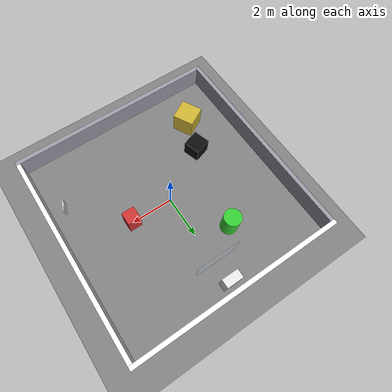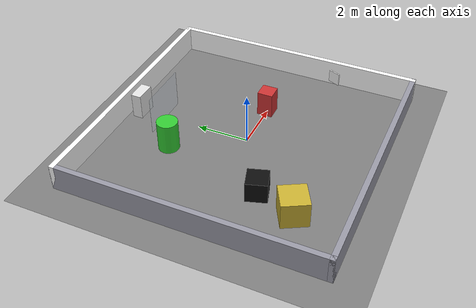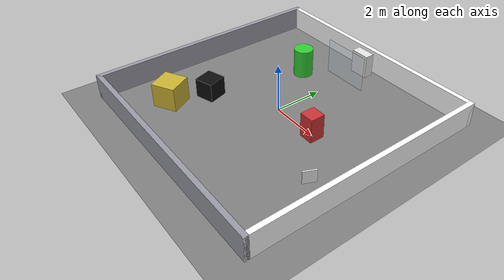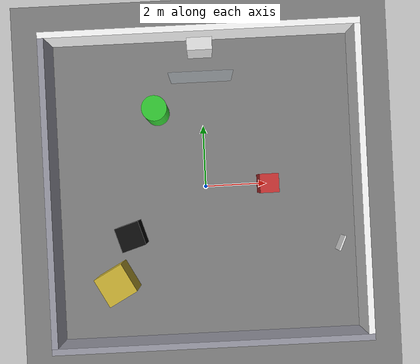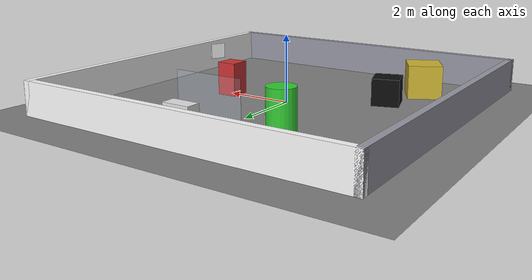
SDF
<?xml version="1.0"?>
<sdf version="1.9">
  <world name="turtlebot3_ouster">

    <physics name="default" type="ignored">
      <max_step_size>0.004</max_step_size>
      <real_time_factor>1.0</real_time_factor>
      <real_time_update_rate>250</real_time_update_rate>
    </physics>

    <plugin filename="gz-sim-physics-system"
            name="gz::sim::systems::Physics"/>
    <plugin filename="gz-sim-scene-broadcaster-system"
            name="gz::sim::systems::SceneBroadcaster"/>
    <plugin filename="gz-sim-user-commands-system"
            name="gz::sim::systems::UserCommands"/>
    <plugin filename="gz-sim-imu-system"
            name="gz::sim::systems::Imu"/>
    <plugin filename="gz-sim-altimeter-system"
            name="gz::sim::systems::Altimeter"/>

    <scene>
      <ambient>0.4 0.4 0.4 1</ambient>
      <background>0.7 0.8 0.9 1</background>
    </scene>

    <light type="directional" name="sun">
      <cast_shadows>true</cast_shadows>
      <pose>0 0 10 0 0 0</pose>
      <diffuse>1 1 1 1</diffuse>
      <specular>0.3 0.3 0.3 1</specular>
      <direction>-0.5 0.3 -1</direction>
    </light>

    <model name="ground_plane">
      <static>true</static>
      <link name="link">
        <collision name="collision">
          <geometry><plane><normal>0 0 1</normal><size>100 100</size></plane></geometry>
        </collision>
        <visual name="visual">
          <geometry><plane><normal>0 0 1</normal><size>100 100</size></plane></geometry>
          <material><ambient>0.3 0.3 0.3 1</ambient><diffuse>0.5 0.5 0.5 1</diffuse></material>
        </visual>
      </link>
    </model>

    <!-- 10 x 10 m walled arena (4 walls, 0.2 m thick, 1 m tall). -->
    <model name="wall_north">
      <static>true</static>
      <pose>0 5 0.5 0 0 0</pose>
      <link name="link">
        <collision name="c"><geometry><box><size>10.2 0.2 1</size></box></geometry></collision>
        <visual name="v"><geometry><box><size>10.2 0.2 1</size></box></geometry>
          <material><ambient>1 1 1 1</ambient><diffuse>1 1 1 1</diffuse><pbr><metal><albedo_map>../media/materials/textures/brick_graffiti.png</albedo_map><metalness>0</metalness><roughness>0.85</roughness></metal></pbr></material></visual>
      </link>
    </model>
    <model name="wall_south">
      <static>true</static>
      <pose>0 -5 0.5 0 0 0</pose>
      <link name="link">
        <collision name="c"><geometry><box><size>10.2 0.2 1</size></box></geometry></collision>
        <visual name="v"><geometry><box><size>10.2 0.2 1</size></box></geometry>
          <material><diffuse>0.6 0.6 0.65 1</diffuse></material></visual>
      </link>
    </model>
    <model name="wall_east">
      <static>true</static>
      <pose>5 0 0.5 0 0 0</pose>
      <link name="link">
        <collision name="c"><geometry><box><size>0.2 10.2 1</size></box></geometry></collision>
        <visual name="v"><geometry><box><size>0.2 10.2 1</size></box></geometry>
          <material><ambient>1 1 1 1</ambient><diffuse>1 1 1 1</diffuse><pbr><metal><albedo_map>../media/materials/textures/brick_graffiti.png</albedo_map><metalness>0</metalness><roughness>0.85</roughness></metal></pbr></material></visual>
      </link>
    </model>
    <model name="wall_west">
      <static>true</static>
      <pose>-5 0 0.5 0 0 0</pose>
      <link name="link">
        <collision name="c"><geometry><box><size>0.2 10.2 1</size></box></geometry></collision>
        <visual name="v"><geometry><box><size>0.2 10.2 1</size></box></geometry>
          <material><diffuse>0.6 0.6 0.65 1</diffuse></material></visual>
      </link>
    </model>

    <model name="box_near">
      <static>true</static>
      <pose>2 0 0.5 0 0 0</pose>
      <link name="link">
        <collision name="c"><geometry><box><size>0.6 0.6 1</size></box></geometry></collision>
        <visual name="v">
          <laser_retro>0.8</laser_retro>
          <geometry><box><size>0.6 0.6 1</size></box></geometry>
          <material><diffuse>0.8 0.2 0.2 1</diffuse></material></visual>
      </link>
    </model>
    <model name="cyl_mid">
      <static>true</static>
      <pose>-1.5 2.5 0.6 0 0 0</pose>
      <link name="link">
        <collision name="c"><geometry><cylinder><radius>0.4</radius><length>1.2</length></cylinder></geometry></collision>
        <visual name="v">
          <geometry><cylinder><radius>0.4</radius><length>1.2</length></cylinder></geometry>
          <material><diffuse>0.2 0.8 0.2 1</diffuse></material></visual>
      </link>
    </model>
    <model name="box_corner">
      <static>true</static>
      <pose>-3 -3 0.5 0 0 0.5</pose>
      <link name="link">
        <collision name="c"><geometry><box><size>1 1 1</size></box></geometry></collision>
        <visual name="v">
          <laser_retro>0.1</laser_retro>
          <geometry><box><size>1 1 1</size></box></geometry>
          <material><diffuse>0.8 0.7 0.2 1</diffuse></material></visual>
      </link>
    </model>
    <model name="retro_sign">
      <static>true</static>
      <pose>4.2 -2 0.8 0 0 1.15</pose>
      <link name="link">
        <collision name="c"><geometry><box><size>0.5 0.05 0.5</size></box></geometry></collision>
        <visual name="v">
          <laser_retro>8.0</laser_retro>
          <geometry><box><size>0.5 0.05 0.5</size></box></geometry>
          <material><diffuse>0.95 0.95 0.95 1</diffuse></material></visual>
      </link>
    </model>

    <model name="glass_pane">
      <static>true</static>
      <pose>0 3.5 0.75 0 0 0</pose>
      <link name="link">
        <collision name="c"><geometry><box><size>2 0.02 1.5</size></box></geometry></collision>
        <visual name="v">
          <transparency>0.9</transparency>
          <geometry><box><size>2 0.02 1.5</size></box></geometry>
          <material><diffuse>0.8 0.9 1.0 0.3</diffuse>
            <specular>1.0 1.0 1.0 1</specular></material>
        </visual>
      </link>
    </model>
    <model name="box_behind_glass">
      <static>true</static>
      <pose>0 4.5 0.5 0 0 0</pose>
      <link name="link">
        <collision name="c"><geometry><box><size>0.8 0.4 1</size></box></geometry></collision>
        <visual name="v">
          <laser_retro>0.9</laser_retro>
          <geometry><box><size>0.8 0.4 1</size></box></geometry>
          <material><diffuse>0.9 0.9 0.9 1</diffuse></material>
        </visual>
      </link>
    </model>
    <model name="glossy_black_box">
      <static>true</static>
      <pose>-2.5 -1.5 0.4 0 0 0.3</pose>
      <link name="link">
        <collision name="c"><geometry><box><size>0.8 0.8 0.8</size></box></geometry></collision>
        <visual name="v">
          <laser_retro>0.05</laser_retro>
          <geometry><box><size>0.8 0.8 0.8</size></box></geometry>
          <material><diffuse>0.05 0.05 0.05 1</diffuse>
            <specular>0.45 0.45 0.45 1</specular></material>
        </visual>
      </link>
    </model>

  </world>
</sdf>
